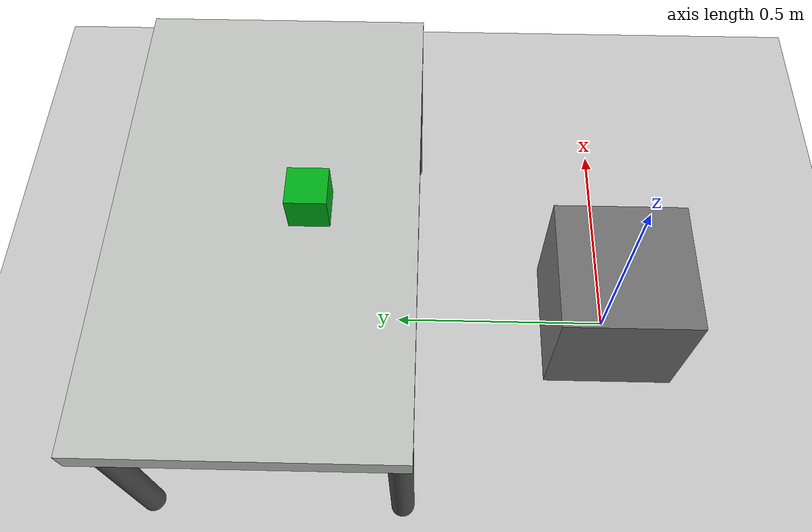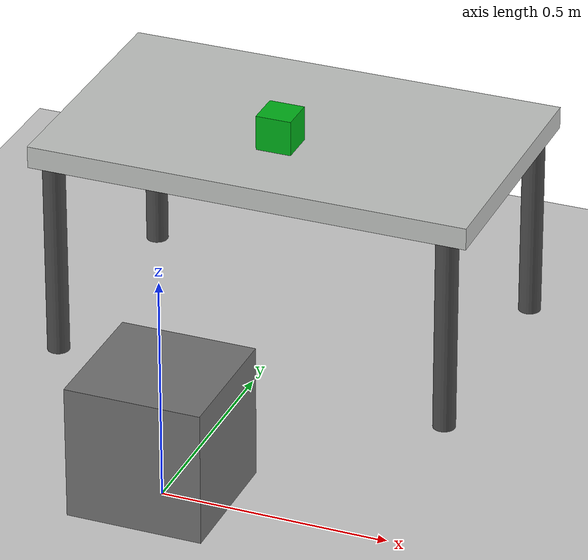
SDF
<?xml version="1.0" ?>
<sdf version="1.6">
  <world name="inspection_cell">
    <physics name="1ms" type="ignored">
      <max_step_size>0.001</max_step_size>
      <real_time_factor>1.0</real_time_factor>
    </physics>
    <plugin
      filename="gz-sim-physics-system"
      name="gz::sim::systems::Physics">
    </plugin>
    <plugin
      filename="gz-sim-user-commands-system"
      name="gz::sim::systems::UserCommands">
    </plugin>
    <plugin
      filename="gz-sim-scene-broadcaster-system"
      name="gz::sim::systems::SceneBroadcaster">
    </plugin>
    <plugin
      filename="gz-sim-contact-system"
      name="gz::sim::systems::Contact">
    </plugin>

    <light type="directional" name="sun">
      <cast_shadows>true</cast_shadows>
      <pose>0 0 10 0 0 0</pose>
      <diffuse>0.8 0.8 0.8 1</diffuse>
      <specular>0.2 0.2 0.2 1</specular>
      <attenuation>
        <range>1000</range>
        <constant>0.9</constant>
        <linear>0.01</linear>
        <quadratic>0.001</quadratic>
      </attenuation>
      <direction>-0.5 0.1 -0.9</direction>
    </light>

    <model name="ground_plane">
      <static>true</static>
      <link name="link">
        <collision name="collision">
          <geometry>
            <plane>
              <normal>0 0 1</normal>
              <size>100 100</size>
            </plane>
          </geometry>
        </collision>
        <visual name="visual">
          <geometry>
            <plane>
              <normal>0 0 1</normal>
              <size>100 100</size>
            </plane>
          </geometry>
          <material>
            <ambient>0.8 0.8 0.8 1</ambient>
            <diffuse>0.8 0.8 0.8 1</diffuse>
            <specular>0.8 0.8 0.8 1</specular>
          </material>
        </visual>
      </link>
    </model>

    <model name="inspection_table">
      <static>true</static>
      <pose>0.00 0.75 0.475 0 0 0</pose>
      <link name="table_link">
        <visual name="table_top_visual">
          <geometry>
            <box>
              <size>1.0 0.6 0.05</size>
            </box>
          </geometry>
          <material>
            <ambient>0.77 0.78 0.77 1</ambient>
            <diffuse>0.77 0.78 0.77 1</diffuse>
            <specular>0.2 0.2 0.2 1</specular>
          </material>
        </visual>
        <collision name="table_top_collision">
          <geometry>
            <box>
              <size>1.0 0.6 0.05</size>
            </box>
          </geometry>
        </collision>

        <visual name="table_leg_1_visual">
          <pose>0.45 -0.275 -0.250 0 0 0</pose>
          <geometry>
            <cylinder>
              <radius>0.025</radius>
              <length>0.450</length>
            </cylinder>
          </geometry>
          <material>
            <ambient>0.30 0.30 0.30 1</ambient>
            <diffuse>0.30 0.30 0.30 1</diffuse>
            <specular>0.1 0.1 0.1 1</specular>
          </material>
        </visual>
        <collision name="table_leg_1_collision">
          <pose>0.45 -0.275 -0.250 0 0 0</pose>
          <geometry>
            <cylinder>
              <radius>0.025</radius>
              <length>0.450</length>
            </cylinder>
          </geometry>
        </collision>

        <visual name="table_leg_2_visual">
          <pose>-0.45 -0.275 -0.250 0 0 0</pose>
          <geometry>
            <cylinder>
              <radius>0.025</radius>
              <length>0.450</length>
            </cylinder>
          </geometry>
          <material>
            <ambient>0.30 0.30 0.30 1</ambient>
            <diffuse>0.30 0.30 0.30 1</diffuse>
            <specular>0.1 0.1 0.1 1</specular>
          </material>
        </visual>
        <collision name="table_leg_2_collision">
          <pose>-0.45 -0.275 -0.250 0 0 0</pose>
          <geometry>
            <cylinder>
              <radius>0.025</radius>
              <length>0.450</length>
            </cylinder>
          </geometry>
        </collision>

        <visual name="table_leg_3_visual">
          <pose>0.45 0.275 -0.250 0 0 0</pose>
          <geometry>
            <cylinder>
              <radius>0.025</radius>
              <length>0.450</length>
            </cylinder>
          </geometry>
          <material>
            <ambient>0.30 0.30 0.30 1</ambient>
            <diffuse>0.30 0.30 0.30 1</diffuse>
            <specular>0.1 0.1 0.1 1</specular>
          </material>
        </visual>
        <collision name="table_leg_3_collision">
          <pose>0.45 0.275 -0.250 0 0 0</pose>
          <geometry>
            <cylinder>
              <radius>0.025</radius>
              <length>0.450</length>
            </cylinder>
          </geometry>
        </collision>

        <visual name="table_leg_4_visual">
          <pose>-0.45 0.275 -0.250 0 0 0</pose>
          <geometry>
            <cylinder>
              <radius>0.025</radius>
              <length>0.450</length>
            </cylinder>
          </geometry>
          <material>
            <ambient>0.30 0.30 0.30 1</ambient>
            <diffuse>0.30 0.30 0.30 1</diffuse>
            <specular>0.1 0.1 0.1 1</specular>
          </material>
        </visual>
        <collision name="table_leg_4_collision">
          <pose>-0.45 0.275 -0.250 0 0 0</pose>
          <geometry>
            <cylinder>
              <radius>0.025</radius>
              <length>0.450</length>
            </cylinder>
          </geometry>
        </collision>
      </link>
    </model>

    <model name="robot_platform">
      <static>true</static>
      <pose>0.0 0.0 0.15 0 0 0</pose>
      <link name="link">
        <visual name="visual">
          <geometry>
            <box>
              <size>0.30 0.30 0.30</size>
            </box>
          </geometry>
          <material>
            <ambient>0.45 0.45 0.45 1</ambient>
            <diffuse>0.45 0.45 0.45 1</diffuse>
            <specular>0.2 0.2 0.2 1</specular>
          </material>
        </visual>
        <collision name="collision">
          <geometry>
            <box>
              <size>0.30 0.30 0.30</size>
            </box>
          </geometry>
        </collision>
      </link>
    </model>

    <!-- Workpieces on the table (bases at z = 0.50 m). -->
    <model name="part_1">
      <static>true</static>
      <pose>0.00 0.66 0.54 0 0 0</pose>
      <link name="link">
        <visual name="visual">
          <geometry>
            <box>
              <size>0.08 0.08 0.08</size>
            </box>
          </geometry>
          <material>
            <ambient>0.0 0.7 0.1 1</ambient>
            <diffuse>0.0 0.7 0.1 1</diffuse>
            <specular>0.2 0.2 0.2 1</specular>
          </material>
        </visual>
        <collision name="collision">
          <geometry>
            <box>
              <size>0.08 0.08 0.08</size>
            </box>
          </geometry>
        </collision>
      </link>
    </model>

  </world>
</sdf>
